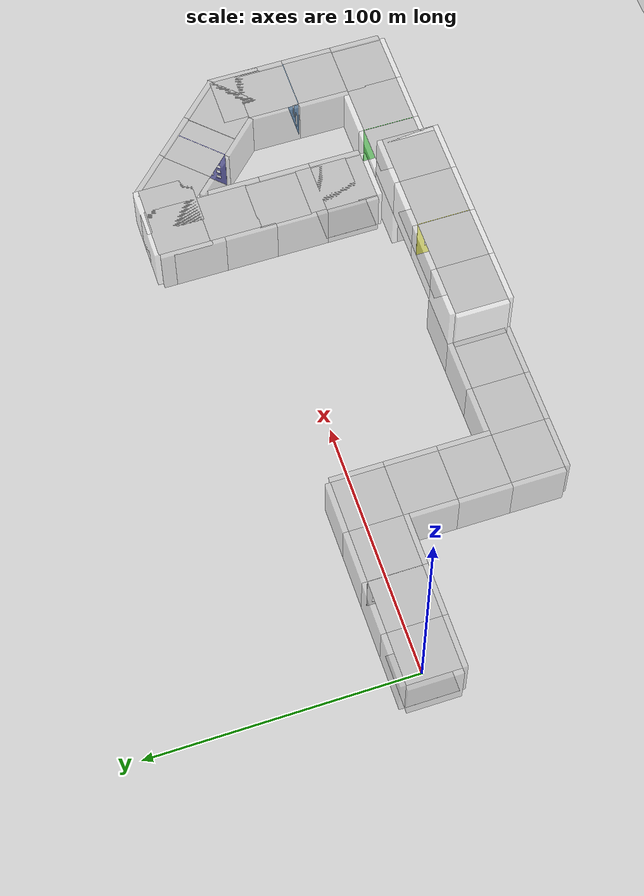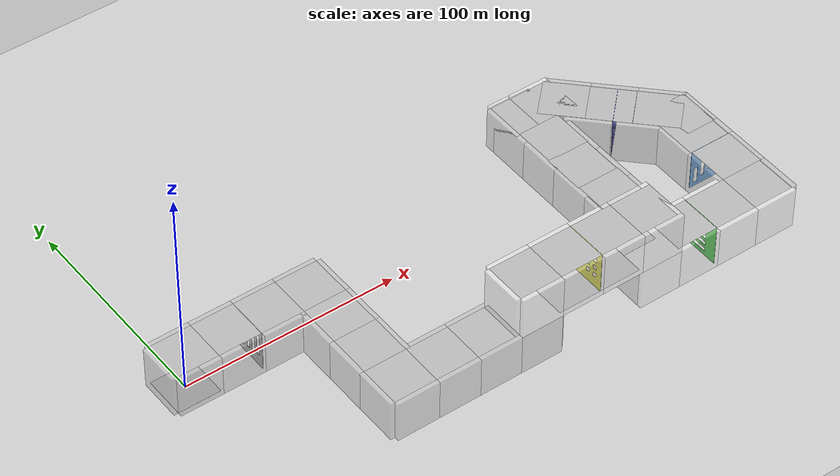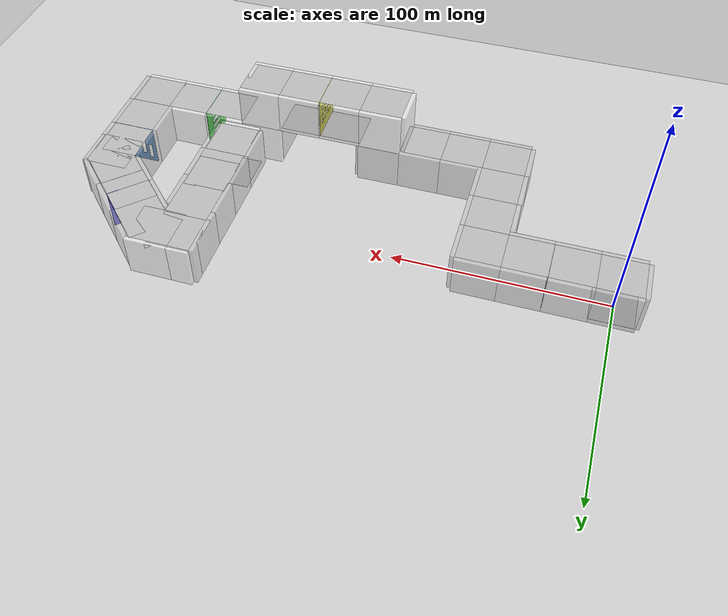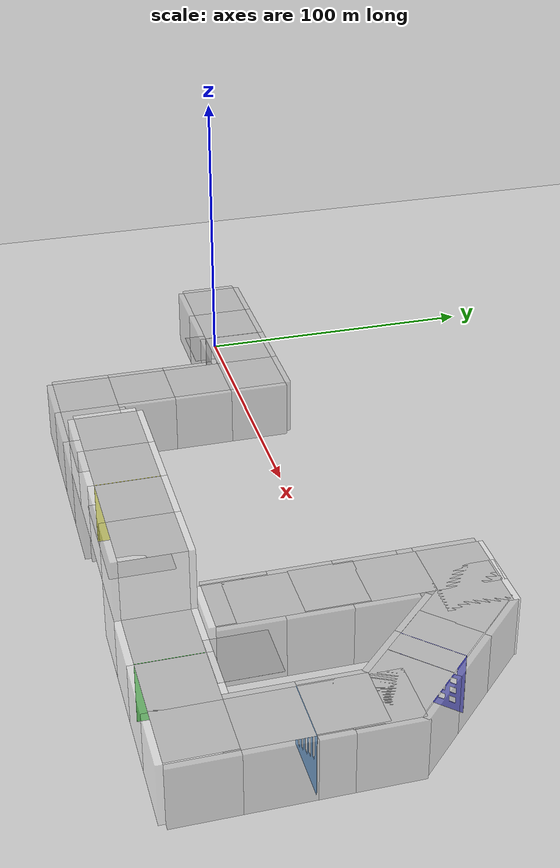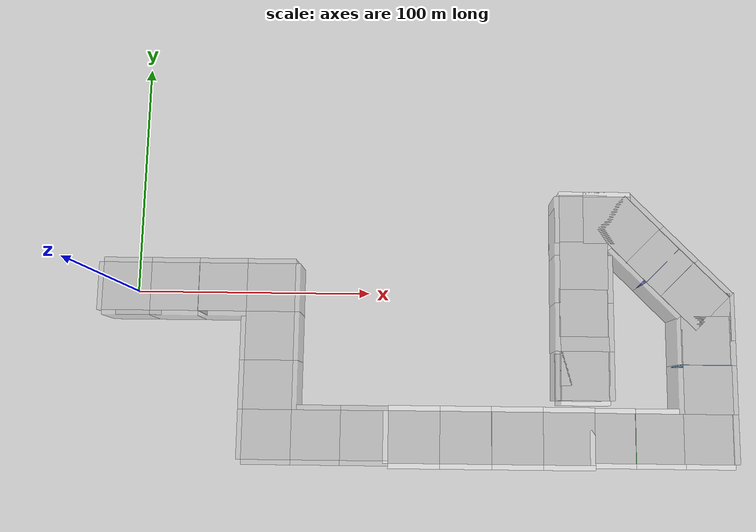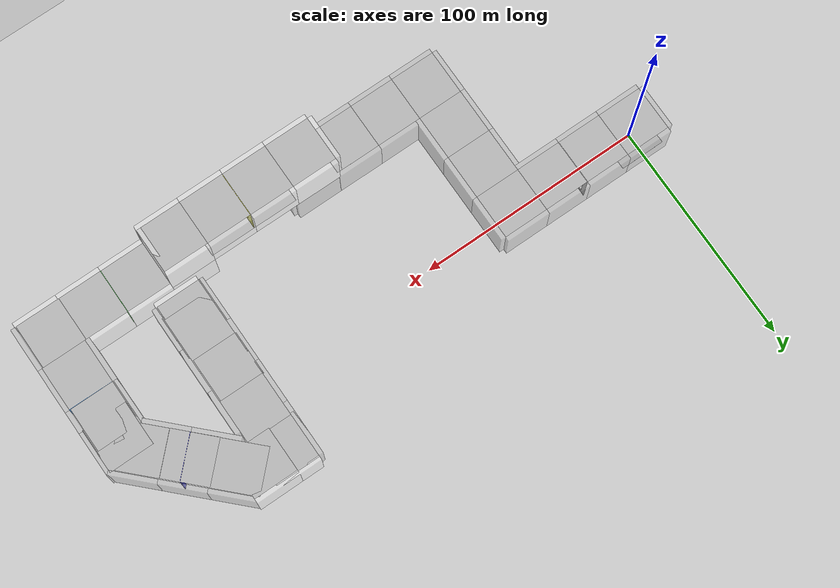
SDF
<sdf version="1.5">
 <world name="default">
  <scene>
   <ambient>0.8 0.8 0.8 1.0</ambient>
   <grid>false</grid>
   <shadows>true</shadows>
   <sky><clouds><speed>12</speed></clouds></sky>
  </scene>
  <include><uri>model://race2new</uri></include>
  <include><uri>model://grass_plane</uri></include>
  <include><uri>model://barycenter</uri></include>
  <include><uri>model://partition_13</uri><pose>30 0 0 0 0 -1.574</pose></include>
  <include><uri>model://partition_1</uri><pose>150 -60 20 0 0 1.574</pose></include>
  <include><uri>model://partition_2</uri><pose>210 -60 0 0 0 -1.574</pose></include>
  <include><uri>model://partition_12</uri><pose>240 -30 0 0 0 0</pose></include>
  <include><uri>model://partition_11</uri><pose>222.9 11 0 0 0 0.785</pose></include>
  <include><uri>model://start_place</uri><pose>0 0 0.05 0 0 0</pose></include>
  <include><uri>model://finish_place</uri><pose>190 -35 0.05 0 0 0</pose></include>
  <light name="user_spot_light_0" type="spot">
   <pose>0 0 200 0 -0 0</pose>
   <diffuse>0.9 0.9 0.9 1</diffuse>
   <specular>0.3 0.3 0.3 1</specular>
   <direction>0 0 -1</direction>
   <attenuation>
    <range>400</range>
    <constant>0.003</constant>
    <linear>0.0003</linear>
    <quadratic>0.00003</quadratic>
   </attenuation>
   <cast_shadows>0</cast_shadows>
   <spot><inner_angle>1.9</inner_angle><outer_angle>2.1</outer_angle><falloff>1</falloff></spot>
  </light>
  <light name="user_spot_light_1" type="spot">
   <pose>200 20 200 0 -0 0</pose>
   <diffuse>0.9 0.9 0.9 1</diffuse>
   <specular>0.3 0.3 0.3 1</specular>
   <direction>0 0 -1</direction>
   <attenuation>
    <range>400</range>
    <constant>0.003</constant>
    <linear>0.0003</linear>
    <quadratic>0.00003</quadratic>
   </attenuation>
   <cast_shadows>0</cast_shadows>
   <spot><inner_angle>1.9</inner_angle><outer_angle>2.1</outer_angle><falloff>1</falloff></spot>
  </light>
  <physics name="default_physics" default="0" type="ode">
   <gravity>0 0 -9.8066</gravity>
   <ode>
    <solver>
     <type>quick</type>
     <iters>10</iters>
     <sor>1.3</sor>
     <use_dynamic_moi_rescaling>0</use_dynamic_moi_rescaling>
    </solver>
    <constraints>
     <cfm>0</cfm>
     <erp>0.2</erp>
     <contact_max_correcting_vel>100</contact_max_correcting_vel>
     <contact_surface_layer>0.001</contact_surface_layer>
    </constraints>
   </ode>
   <max_step_size>0.004</max_step_size>
   <real_time_factor>1</real_time_factor>
   <real_time_update_rate>250</real_time_update_rate>
   <magnetic_field>6e-06 2.3e-05 -4.2e-05</magnetic_field>
  </physics>
 </world>
</sdf>

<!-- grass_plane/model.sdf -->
<sdf version="1.4">
   <model name="grass_plane">
      <static>true</static>
      <link name="link">
         <collision name="collision">
            <geometry>
               <plane>
                  <normal>0 0 1</normal>
                  <size>1000 1000</size>
               </plane>
            </geometry>
            <surface>
               <friction>
                  <ode>
                     <mu>100</mu>
                     <mu2>50</mu2>
                  </ode>
               </friction>
            </surface>
         </collision>
         <visual name="visual">
            <cast_shadows>false</cast_shadows>
            <geometry>
               <plane>
                  <normal>0 0 1</normal>
                  <size>1000 1000</size>
               </plane>
            </geometry>
            <material>
               <script>
                  <uri>model://grass_plane/materials/scripts</uri>
                  <uri>model://grass_plane/materials/textures/</uri>
                  <name>GrassPlane/Image</name>
               </script>
            </material>
         </visual>
      </link>
   </model>
</sdf>

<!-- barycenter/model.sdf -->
<sdf version='1.6'>
  <model name='barycenter'>
    <link name='link'>
      <pose frame=''>0 0 0 0 0 0</pose>
      <gravity>0</gravity>
      <self_collide>0</self_collide>
      <kinematic>0</kinematic>
      <visual name='visual'>
        <pose frame=''>0 0 0 0 -0 0</pose>
        <geometry>
          <box>
            <size>0.01 0.01 0.01</size>
          </box>
        </geometry>
        <transparency>1</transparency>
        <cast_shadows>0</cast_shadows>
      </visual>
    </link>
    <static>0</static>
    <allow_auto_disable>1</allow_auto_disable>
  </model>
</sdf>

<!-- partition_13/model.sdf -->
<sdf version="1.5">
  <model name="partition_13">
    <static>true</static>
    <link name="link">
    <pose>-10 0 0 1.57 0 0</pose>
      <collision name="collision">
        <geometry>
          <mesh>
            <scale>0.001 0.001 0.001</scale>
            <uri>model://partition_13/model.stl</uri>
        </mesh>
        </geometry>
      </collision>
      <visual name="visual">
        <cast_shadows>true</cast_shadows>
        <geometry>
            <mesh>
                <scale>0.001 0.001 0.001</scale>
                <uri>model://partition_13/model.stl</uri>
            </mesh>
        </geometry>
        <material>
              <ambient>0.8 0.8 0.8 1</ambient>
              <diffuse>0.8 0.8 0.8 1</diffuse>
              <specular>0.1 0.1 0.1 0</specular>
              <emissive>0.2 0.1 0.1 1</emissive>
            </material>
    </visual>
    </link>
  </model>
</sdf>

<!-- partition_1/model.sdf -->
<sdf version="1.5">
  <model name="partition_1">
    <static>true</static>
    <link name="link">
    <pose>-10 0 0 1.57 0 0</pose>
      <collision name="collision">
        <geometry>
          <mesh>
            <scale>0.001 0.001 0.001</scale>
            <uri>model://partition_1/model.stl</uri>
        </mesh>
        </geometry>
      </collision>
      <visual name="visual">
        <cast_shadows>true</cast_shadows>
        <geometry>
            <mesh>
                <scale>0.001 0.001 0.001</scale>
                <uri>model://partition_1/model.stl</uri>
            </mesh>
        </geometry>
        <material>
          <ambient>0.9 0.9 0.1 1</ambient>
          <diffuse>0.9 0.9 0.1 1</diffuse>
          <specular>0.1 0.1 0.1 0</specular>
          <emissive>0.2 0.1 0.1 1</emissive>
        </material>
    </visual>
    </link>
  </model>
</sdf>

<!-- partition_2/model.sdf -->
<sdf version="1.5">
  <model name="partition_2">
    <static>true</static>
    <link name="link">
    <pose>-10 0 0 1.57 0 0</pose>
      <collision name="collision">
        <geometry>
          <mesh>
            <scale>0.001 0.001 0.001</scale>
            <uri>model://partition_2/model.stl</uri>
        </mesh>
        </geometry>
      </collision>
      <visual name="visual">
        <cast_shadows>true</cast_shadows>
        <geometry>
            <mesh>
                <scale>0.001 0.001 0.001</scale>
                <uri>model://partition_2/model.stl</uri>
            </mesh>
        </geometry>
        <material>
          <ambient>0.1 0.8 0.1 1</ambient>
          <diffuse>0.1 0.8 0.1 1</diffuse>
          <specular>0.1 0.1 0.1 0</specular>
          <emissive>0.1 0.2 0.1 1</emissive>
        </material>
    </visual>
    </link>
  </model>
</sdf>

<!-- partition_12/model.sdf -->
<sdf version="1.5">
  <model name="partition_12">
    <static>true</static>
    <link name="link">
    <pose>-10 0 0 1.57 0 0</pose>
      <collision name="collision">
        <geometry>
          <mesh>
            <scale>0.001 0.001 0.001</scale>
            <uri>model://partition_12/model.stl</uri>
        </mesh>
        </geometry>
      </collision>
      <visual name="visual">
        <cast_shadows>true</cast_shadows>
        <geometry>
            <mesh>
                <scale>0.001 0.001 0.001</scale>
                <uri>model://partition_12/model.stl</uri>
            </mesh>
        </geometry>
        <material>
              <ambient>0.4 0.7 1. 1</ambient>
              <diffuse>0.4 0.7 1. 1</diffuse>
              <specular>0.1 0.1 0.1 0</specular>
              <emissive>0.2 0.2 0.2 1</emissive>
            </material>
    </visual>
    </link>
  </model>
</sdf>

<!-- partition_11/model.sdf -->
<sdf version="1.5">
  <model name="partition_11">
    <static>true</static>
    <link name="link">
    <pose>-10 0 0 1.57 0 0</pose>
      <collision name="collision">
        <geometry>
          <mesh>
            <scale>0.001 0.001 0.001</scale>
            <uri>model://partition_11/model.stl</uri>
        </mesh>
        </geometry>
      </collision>
      <visual name="visual">
        <cast_shadows>true</cast_shadows>
        <geometry>
            <mesh>
                <scale>0.001 0.001 0.001</scale>
                <uri>model://partition_11/model.stl</uri>
            </mesh>
        </geometry>
        <material>
          <ambient>0.3 0.3 0.9 1</ambient>
          <diffuse>0.3 0.3 0.9 1</diffuse>
          <specular>0.1 0.1 0.1 0</specular>
          <emissive>0.2 0.2 0.3 1</emissive>
        </material>
    </visual>
    </link>
  </model>
</sdf>

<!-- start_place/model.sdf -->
<sdf version="1.4">
   <model name="start_place">
      <static>true</static>
      <link name="link">
         <collision name="collision">
            <geometry>
               <plane>
                  <normal>0 0 1</normal>
                  <size>20 20</size>
               </plane>
            </geometry>
            <surface>
               <friction>
                  <ode>
                     <mu>100</mu>
                     <mu2>50</mu2>
                  </ode>
               </friction>
            </surface>
         </collision>
         <visual name="visual">
            <cast_shadows>false</cast_shadows>
            <geometry>
               <plane>
                  <normal>0 0 1</normal>
                  <size>20 20</size>
               </plane>
            </geometry>
            <material>
               <script>
                  <uri>model://start_place/materials/scripts</uri>
                  <uri>model://start_place/materials/textures/</uri>
                  <name>StartPlace/Image</name>
               </script>
            </material>
         </visual>
      </link>
   </model>
</sdf>

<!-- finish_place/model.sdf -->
<sdf version="1.4">
   <model name="finish_place">
      <static>true</static>
      <link name="link">
         <collision name="collision">
            <geometry>
               <plane>
                  <normal>0 0 1</normal>
                  <size>20 20</size>
               </plane>
            </geometry>
            <surface>
               <friction>
                  <ode>
                     <mu>100</mu>
                     <mu2>50</mu2>
                  </ode>
               </friction>
            </surface>
         </collision>
         <visual name="visual">
            <cast_shadows>false</cast_shadows>
            <geometry>
               <plane>
                  <normal>0 0 1</normal>
                  <size>20 20</size>
               </plane>
            </geometry>
            <material>
               <script>
                  <uri>model://finish_place/materials/scripts</uri>
                  <uri>model://finish_place/materials/textures/</uri>
                  <name>FinishPlace/Image</name>
               </script>
            </material>
         </visual>
      </link>
   </model>
</sdf>
